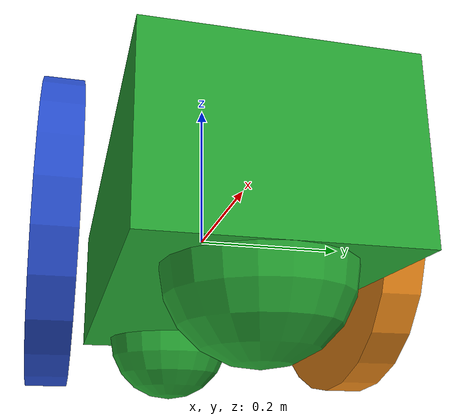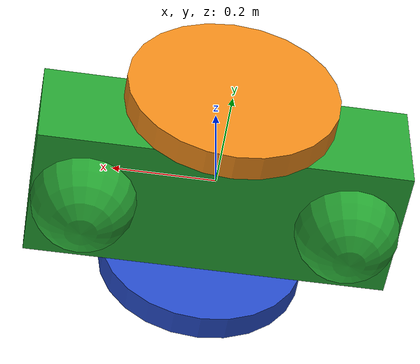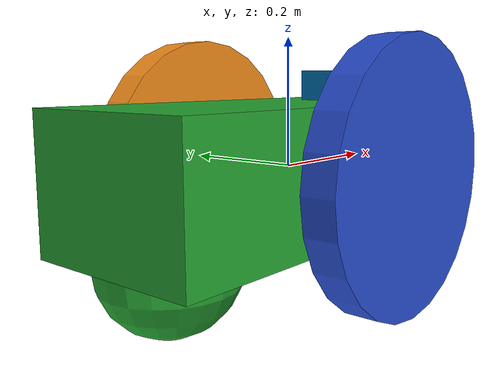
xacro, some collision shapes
<?xml version='1.0'?>

<robot name="my_robot" xmlns:xacro="http://www.ros.org/wiki/xacro">

<xacro:include filename="$(find my_robot)/urdf/my_robot.gazebo" />

<!-- here are the links -->

<!-- chassis -->

  <link name='chassis'>
    <pose>0 0 0.1 0 0 0</pose>

    <inertial>
      <mass value="15.0"/>
      <origin xyz="0.0 0 0" rpy=" 0 0 0"/>
      <inertia
          ixx="0.1" ixy="0" ixz="0"
          iyy="0.1" iyz="0"
          izz="0.1"
      />
    </inertial>

    <collision name='collision'>
      <origin xyz="0 0 0" rpy=" 0 0 0"/>
      <geometry>
        <box size=".7 .28 .2"/>
      </geometry>
    </collision>

    <visual name='chassis_visual'>
      <origin xyz="0 0 0" rpy=" 0 0 0"/>
      <geometry>
        <box size=".7 .28 .2"/>
      </geometry>
    </visual>

    <collision name='back_caster_collision'>
      <origin xyz="-0.25 0 -0.1" rpy=" 0 0 0"/>
      <geometry>
        <sphere radius="0.0998"/>
      </geometry>
    </collision>

    <visual name='back_caster_visual'>
      <origin xyz="-0.25 0 -0.1" rpy=" 0 0 0"/>
      <geometry>
        <sphere radius="0.1"/>
      </geometry>
    </visual>

    <collision name='front_caster_collision'>
      <origin xyz="0.25 0 -0.1" rpy=" 0 0 0"/>
      <geometry>
        <sphere radius="0.0998"/>
      </geometry>
    </collision>

    <visual name='front_caster_visual'>
      <origin xyz="0.25 0 -0.1" rpy=" 0 0 0"/>
      <geometry>
        <sphere radius="0.1"/>
      </geometry>
    </visual>

  </link>

<!-- left wheel -->

  <link name='left_wheel'>
    <pose>0 0 0.1 0 0 0</pose>
    <inertial>
      <mass value="5.0"/>
      <origin xyz="0.0 0 0" rpy="0 1.5707 1.5707"/>
      <inertia
          ixx="0.1" ixy="0" ixz="0"
          iyy="0.1" iyz="0"
          izz="0.1"
      />
    </inertial>

    <collision name='left_wheel_collision'>
      <origin xyz="0.0 0 0" rpy="0 1.5707 1.5707"/>
      <geometry>
        <cylinder radius=".2" length=".05"/>
      </geometry>
    </collision>

    <visual name='left_wheel_visual'>
      <origin xyz="0.0 0 0" rpy="0 1.5707 1.5707"/>
      <geometry>
        <cylinder radius=".2" length=".05"/>
      </geometry>
    </visual>
  </link>

<!-- right wheel -->

  <link name='right_wheel'>
    <pose>0 0 0.1 0 0 0</pose>
    <inertial>
      <mass value="5.0"/>
      <origin xyz="0.0 0 0" rpy=" 0 1.5707 1.5707"/>
      <inertia
          ixx="0.1" ixy="0" ixz="0"
          iyy="0.1" iyz="0"
          izz="0.1"
      />
    </inertial>

    <collision name='right_wheel_collision'>
      <origin xyz="0.0 0 0" rpy="0 1.5707 1.5707"/>
      <geometry>
        <cylinder radius=".2" length=".05"/>
      </geometry>
    </collision>

    <visual name='right_wheel_visual'>
     <origin xyz="0.0 0 0" rpy="0 1.5707 1.5707"/>
      <geometry>
        <cylinder radius=".2" length=".05"/>
      </geometry>
    </visual>

  </link>

<!-- camera -->

  <link name='camera'>
    <pose>0 0 0.1 0 0 0</pose>
    <inertial>
      <mass value="0.1"/>
      <origin xyz="0.0 0 0" rpy=" 0 0 0"/>
      <box_intertia
	  mass="0.1" x="0.05" y="0.05" z="0.05"
      />
      <inertia
          ixx="1e-6" ixy="0" ixz="0"
          iyy="1e-6" iyz="0"
          izz="1e-6"
      />
    </inertial>

    <collision name='camera_collision'>
      <origin xyz="0 0 0" rpy=" 0 0 0"/>
      <geometry>
        <box size=".05 .05 .05"/>
      </geometry>
    </collision>

    <visual name='camera_visual'>
      <origin xyz="0 0 0" rpy=" 0 0 0"/>
      <geometry>
        <box size=".05 .05 .05"/>
      </geometry>
    </visual>

  </link>

<!-- hokuyo -->

  <link name='hokuyo'>
    <pose>0 0 0.1 0 0 0</pose>
    <inertial>
      <mass value="1e-5"/>
      <origin xyz="0.0 0 0" rpy=" 0 0 0"/>
      <inertia
          ixx="1e-6" ixy="0" ixz="0"
          iyy="1e-6" iyz="0"
          izz="1e-6"
      />
    </inertial>

    <collision name='hokuyo_collision'>
      <origin xyz="0 0 0" rpy=" 0 0 0"/>
      <geometry>
        <box size=".1 .1 .1"/>
      </geometry>
    </collision>

    <visual name='hokuyo_visual'>
      <origin xyz="0 0 0" rpy=" 0 0 0"/>
      <geometry>
        <mesh filename="package://my_robot/meshes/hokuyo.dae"/>
      </geometry>
    </visual>

  </link>

  <link name="robot_footprint"></link>

<!-- here are the joints -->

  <joint name="robot_footprint_joint" type="fixed">
    <origin xyz="0 0 0" rpy="0 0 0" />
    <parent link="robot_footprint"/>
    <child link="chassis" />
  </joint>

  <joint type="continuous" name="right_wheel_hinge">
    <origin xyz="0.0 -0.2 0" rpy="0 0 0"/>
    <child link="right_wheel"/>
    <parent link="chassis"/>
    <axis xyz="0 1 0" rpy="0 0 0"/>
    <limit effort="10000" velocity="1000"/>
    <dynamics damping="1.0" friction="1.0"/>
  </joint>

  <joint type="continuous" name="left_wheel_hinge">
    <origin xyz="0.0 0.2 0" rpy="0 0 0"/>
    <child link="left_wheel"/>
    <parent link="chassis"/>
    <axis xyz="0 1 0" rpy="0 0 0"/>
    <limit effort="10000" velocity="1000"/>
    <dynamics damping="1.0" friction="1.0"/>
  </joint>

  <joint name="camera_joint" type="fixed">
    <origin xyz="0.25 0 0" rpy="0 0 0" />
    <parent link="chassis"/>
    <child link="camera" />
    <axis xyz="0 1 0" rpy="0 0 0"/>
  </joint>

  <joint name="hokuyo_joint" type="fixed">
    <origin xyz="0.15 0 .1" rpy="0 0 0" />
    <parent link="chassis"/>
    <child link="hokuyo" />
    <axis xyz="0 1 0" rpy="0 0 0"/>
  </joint>
</robot>
